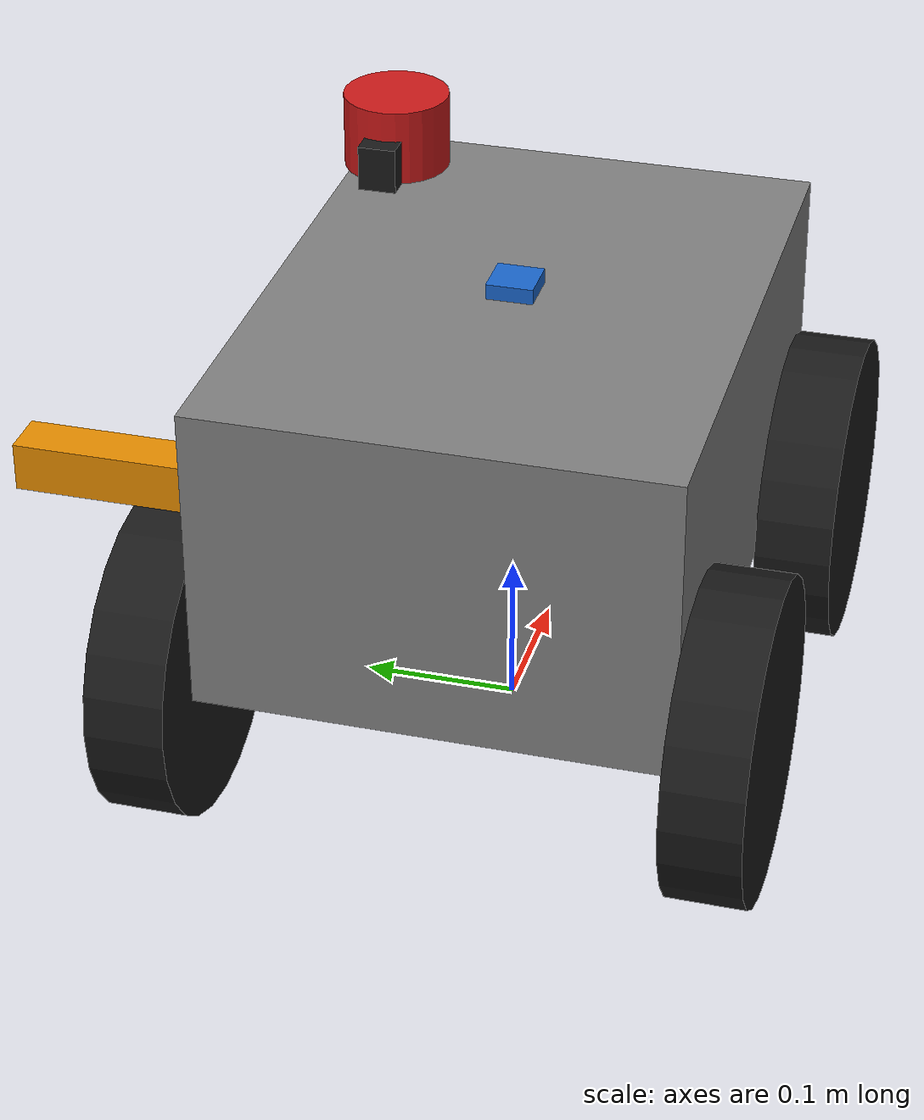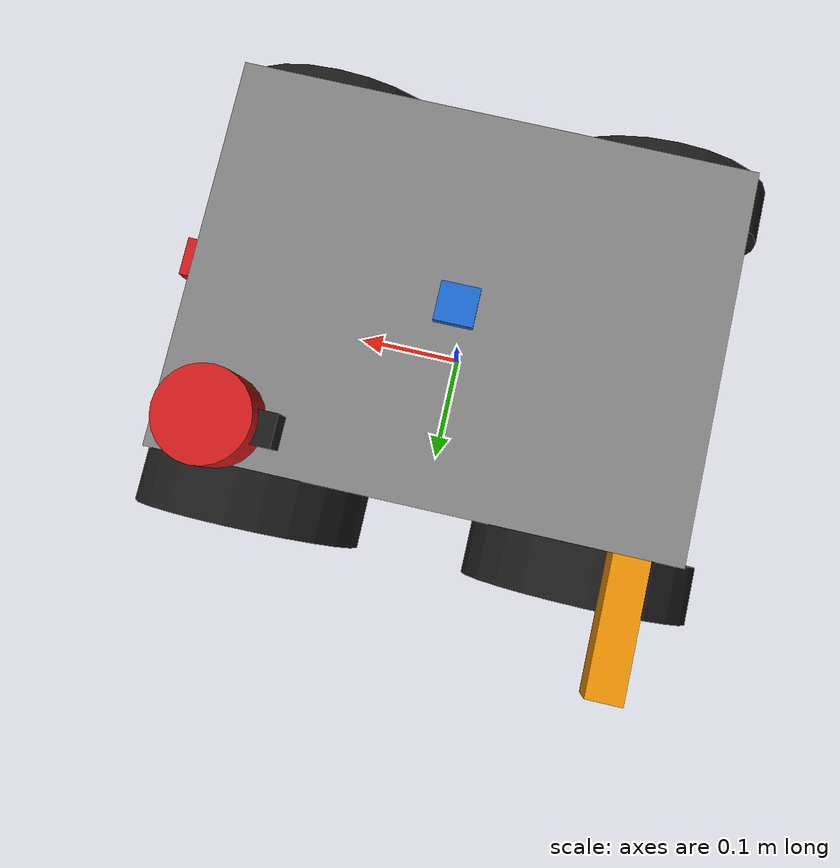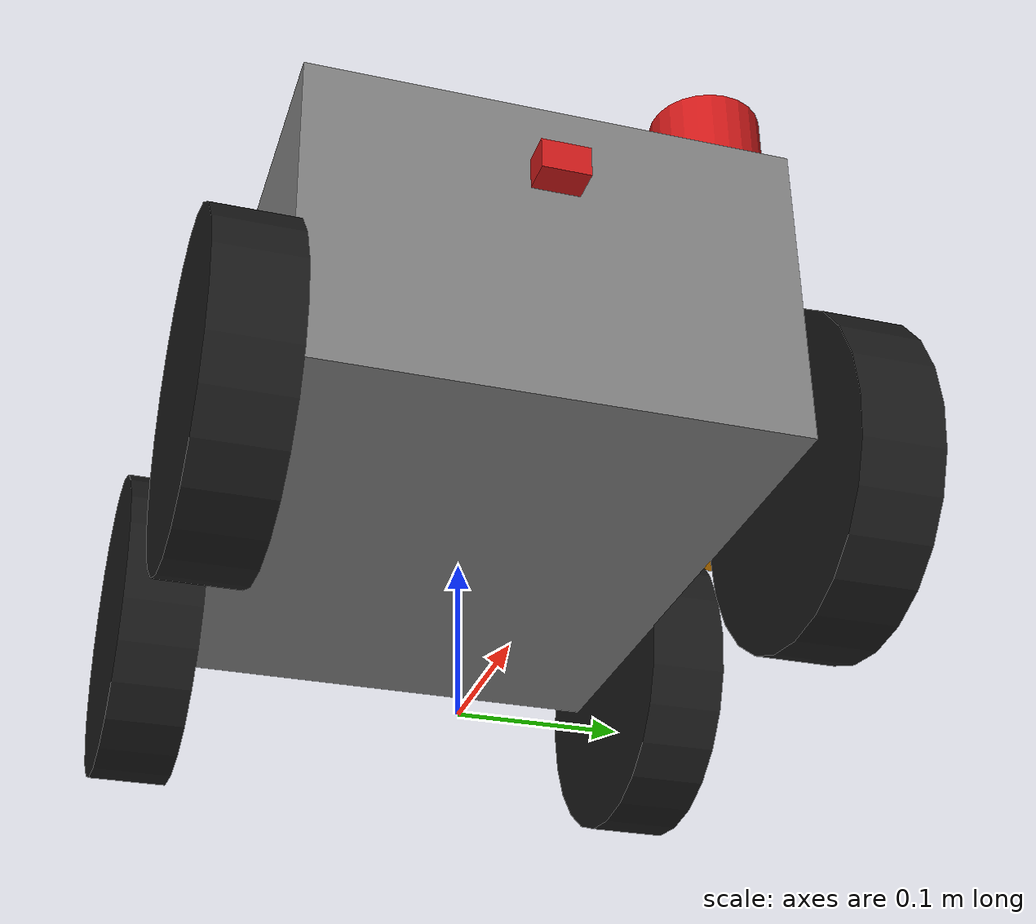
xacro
<?xml version="1.0"?>
<robot name="robot_desmalezador" xmlns:xacro="http://ros.org/wiki/xacro">

  <!-- 1. MATERIALES Y COLORES                                              -->
  <material name="chasis_color">
    <color rgba="0.5 0.5 0.5 1"/> <!-- Gris aluminio -->
  </material>

  <material name="rueda_color">
    <color rgba="0.1 0.1 0.1 1"/> <!-- Negro -->
  </material>

  <material name="lidar_color">
    <color rgba="0.8 0.1 0.1 1"/> <!-- Rojo oscuro -->
  </material>

  <material name="brazo_color">
    <color rgba="0.9 0.55 0.0 1"/> <!-- Naranja industrial -->
  </material>

  <material name="imu_color">
    <color rgba="0.1 0.4 0.8 1"/> <!-- Azul electrónica -->
  </material>

  <!-- 2. CHASIS BASE                                                       -->
  <!-- Dimensiones reales de referencia: 40cm largo (x: -0.20 a +0.20),     -->
  <!-- 30cm ancho (y: -0.15 a +0.15), 20cm alto (z: 0.00 a +0.20)           -->
  <link name="base_footprint"/>

  <joint name="base_joint" type="fixed">
    <parent link="base_footprint"/>
    <child link="base_link"/>
    <!-- Elevamos el chasis para alinear el eje de las ruedas (r = 0.1016m) -->
    <origin xyz="0 0 0.1016" rpy="0 0 0"/>
  </joint>

  <link name="base_link">
    <visual>
      <origin xyz="0 0 0.1" rpy="0 0 0"/>
      <geometry>
        <box size="0.4 0.3 0.2"/>
      </geometry>
      <material name="chasis_color"/>
    </visual>
    <collision>
      <origin xyz="0 0 0.1" rpy="0 0 0"/>
      <geometry>
        <box size="0.4 0.3 0.2"/>
      </geometry>
    </collision>
    <inertial>
      <mass value="25.0"/>
      <inertia ixx="0.2708" ixy="0.0" ixz="0.0" iyy="0.4166" iyz="0.0" izz="0.5208"/>
    </inertial>
  </link>

  <!-- 3. RUEDAS (4 ruedas Skid-Steer / DiffDrive)                          -->
  <xacro:macro name="rueda" params="prefix x_reflect y_reflect">
    <link name="${prefix}_wheel">
      <visual>
        <origin xyz="0 0 0" rpy="1.57079632679 0 0"/>
        <geometry>
          <cylinder radius="0.1016" length="0.05"/>
        </geometry>
        <material name="rueda_color"/>
      </visual>
      <collision>
        <origin xyz="0 0 0" rpy="1.57079632679 0 0"/>
        <geometry>
          <cylinder radius="0.1016" length="0.05"/>
        </geometry>
      </collision>
      <inertial>
        <mass value="0.8"/>
        <inertia ixx="0.0022" ixy="0" ixz="0" iyy="0.0022" iyz="0" izz="0.0041"/>
      </inertial>
    </link>

    <joint name="${prefix}_wheel_joint" type="continuous">
      <parent link="base_link"/>
      <child link="${prefix}_wheel"/>
      <origin xyz="${x_reflect * 0.15} ${y_reflect * 0.175} 0" rpy="0 0 0"/>
      <axis xyz="0 1 0"/>
    </joint>

    <gazebo reference="${prefix}_wheel">
      <mu1>0.9</mu1>
      <mu2>0.15</mu2>
    </gazebo>
  </xacro:macro>

  <xacro:rueda prefix="front_left"  x_reflect="1"  y_reflect="1" />
  <xacro:rueda prefix="front_right" x_reflect="1"  y_reflect="-1" />
  <xacro:rueda prefix="rear_left"   x_reflect="-1" y_reflect="1" />
  <xacro:rueda prefix="rear_right"  x_reflect="-1" y_reflect="-1" />

  <!-- 4. SENSOR RPLIDAR A1 (ESQUINA SUPERIOR IZQUIERDA)                    -->
  <!-- Especificación real:                                                 -->
  <!-- - Posición: esquina delantera-izquierda del techo del chasis         -->
  <!--   (x = +0.15 m adelante, y = +0.12 m a la izquierda, z = +0.23 m).   -->
  <!-- - Orientación por defecto: el motor del RPLidar A1 (ángulo 0° / +X   -->
  <!--   del sensor) apunta hacia ATRÁS del robot (-X de base_link).        -->
  <!--   Por ello aplicamos yaw = pi (3.14159265 rad):                      -->
  <!--     *   0° del LiDAR -> Atrás del robot (-X_robot)                   -->
  <!--     * ±180° del LiDAR -> Adelante del robot (+X_robot)               -->
  <!--     *  -90° del LiDAR -> Izquierda del robot (+Y_robot, árboles)     -->
  <link name="lidar_link">
    <visual>
      <geometry>
        <cylinder radius="0.035" length="0.05"/>
      </geometry>
      <material name="lidar_color"/>
    </visual>
    <!-- Pequeño bloque visual representando el motor del RPLidar A1 (+X_lidar hacia atrás) -->
    <visual name="motor_rplidar">
      <origin xyz="0.035 0 -0.01" rpy="0 0 0"/>
      <geometry>
        <box size="0.025 0.025 0.03"/>
      </geometry>
      <material name="rueda_color"/>
    </visual>
    <collision>
      <geometry>
        <cylinder radius="0.035" length="0.05"/>
      </geometry>
    </collision>
    <inertial>
      <mass value="0.2"/>
      <inertia ixx="0.0001" ixy="0" ixz="0" iyy="0.0001" iyz="0" izz="0.0001"/>
    </inertial>
  </link>

  <joint name="lidar_joint" type="fixed">
    <parent link="base_link"/>
    <child link="lidar_link"/>
    <!-- Esquina superior izquierda (x=+0.15m frente, y=+0.12m izq, z=0.23m alto), rotado pi rad -->
    <origin xyz="0.15 0.12 0.23" rpy="0 0 3.14159265359"/>
  </joint>

  <!-- 5. BRAZO TRASERO EXTENSIBLE (STEPPER EN LA PARTE TRASERA)            -->
  <!-- Especificación real:                                                 -->
  <!-- - Ubicado en el extremo trasero izquierdo del chasis (x = -0.17 m).  -->
  <!-- - Al recibir MOVE_Stepper positivo (+X), se despliega hacia la       -->
  <!--   izquierda (+Y_robot) hacia el tronco del árbol; con -X se retrae.  -->
  <!-- - Como el LiDAR está en x = +0.15 m y el brazo en x = -0.17 m        -->
  <!--   (separación longitudinal de 0.32 m), el delay de 1.0 s a 0.20 m/s  -->
  <!--   alinea exactamente este brazo trasero con el centro del tronco.    -->
  <link name="brazo_soporte_link">
    <visual>
      <origin xyz="0 0 0" rpy="0 0 0"/>
      <geometry>
        <box size="0.05 0.08 0.05"/>
      </geometry>
      <material name="rueda_color"/>
    </visual>
    <inertial>
      <mass value="0.3"/>
      <inertia ixx="0.0002" ixy="0" ixz="0" iyy="0.0002" iyz="0" izz="0.0002"/>
    </inertial>
  </link>

  <joint name="brazo_soporte_joint" type="fixed">
    <parent link="base_link"/>
    <child link="brazo_soporte_link"/>
    <!-- Parte más trasera del robot (x = -0.17 m), costado izquierdo (y = +0.11 m) -->
    <origin xyz="-0.17 0.11 0.14" rpy="0 0 0"/>
  </joint>

  <link name="brazo_extensible_link">
    <visual>
      <!-- Barra extensible de 25 cm orientada hacia el lado izquierdo (+Y) -->
      <origin xyz="0 0.02 0" rpy="0 0 0"/>
      <geometry>
        <box size="0.03 0.26 0.03"/>
      </geometry>
      <material name="brazo_color"/>
    </visual>
    <collision>
      <origin xyz="0 0.02 0" rpy="0 0 0"/>
      <geometry>
        <box size="0.03 0.26 0.03"/>
      </geometry>
    </collision>
    <inertial>
      <mass value="0.25"/>
      <inertia ixx="0.001" ixy="0" ixz="0" iyy="0.0001" iyz="0" izz="0.001"/>
    </inertial>
  </link>

  <!-- Articulación prismática que simula el recorrido lineal del stepper (+Y) -->
  <joint name="brazo_stepper_joint" type="prismatic">
    <parent link="brazo_soporte_link"/>
    <child link="brazo_extensible_link"/>
    <origin xyz="0 0 0" rpy="0 0 0"/>
    <axis xyz="0 1 0"/>
    <limit lower="0.0" upper="0.25" effort="50.0" velocity="0.25"/>
    <dynamics damping="5.0" friction="0.5"/>
  </joint>

  <!-- 6. SENSOR FRONTAL TF-MINI (DETECCIÓN DE OBSTÁCULOS FRONTALES)        -->
  <link name="tfmini_link">
    <visual>
      <geometry>
        <box size="0.02 0.03 0.02"/>
      </geometry>
      <material name="lidar_color"/>
    </visual>
    <inertial>
      <mass value="0.05"/>
      <inertia ixx="0.00001" ixy="0" ixz="0" iyy="0.00001" iyz="0" izz="0.00001"/>
    </inertial>
  </link>

  <joint name="tfmini_joint" type="fixed">
    <parent link="base_link"/>
    <child link="tfmini_link"/>
    <!-- Frente del chasis (x = +0.21 m para sobresalir de la caja de colisión) -->
    <origin xyz="0.21 0 0.15" rpy="0 0 0"/>
  </joint>

  <!-- 7. SENSOR IMU (INTEGRADO CON LA STM32 PARA MANTENER RUMBO)           -->
  <link name="imu_link">
    <visual>
      <geometry>
        <box size="0.03 0.03 0.01"/>
      </geometry>
      <material name="imu_color"/>
    </visual>
    <inertial>
      <mass value="0.02"/>
      <inertia ixx="0.00001" ixy="0" ixz="0" iyy="0.00001" iyz="0" izz="0.00001"/>
    </inertial>
  </link>

  <joint name="imu_joint" type="fixed">
    <parent link="base_link"/>
    <child link="imu_link"/>
    <origin xyz="0 0 0.205" rpy="0 0 0"/>
  </joint>

  <!-- 8. PLUGINS DE SIMULACIÓN EN GAZEBO FORTRESS                          -->

  <!-- 8.1 Tracción diferencial de 4 ruedas -->
  <gazebo>
    <plugin filename="ignition-gazebo-diff-drive-system" name="ignition::gazebo::systems::DiffDrive">
      <left_joint>front_left_wheel_joint</left_joint>
      <left_joint>rear_left_wheel_joint</left_joint>
      <right_joint>front_right_wheel_joint</right_joint>
      <right_joint>rear_right_wheel_joint</right_joint>

      <wheel_separation>0.35</wheel_separation>
      <wheel_radius>0.1016</wheel_radius>

      <topic>/cmd_vel</topic>
      <odom_topic>/odom</odom_topic>
      <tf_topic>/tf</tf_topic>
      <frame_id>odom</frame_id>
      <child_frame_id>base_footprint</child_frame_id>
    </plugin>
  </gazebo>

  <!-- 8.2 Controlador de posición del brazo trasero (stepper) -->
  <gazebo>
    <plugin filename="ignition-gazebo-joint-position-controller-system"
            name="ignition::gazebo::systems::JointPositionController">
      <joint_name>brazo_stepper_joint</joint_name>
      <topic>/brazo/cmd_pos</topic>
      <p_gain>40.0</p_gain>
      <i_gain>0.5</i_gain>
      <d_gain>4.0</d_gain>
      <i_max>10.0</i_max>
      <i_min>-10.0</i_min>
      <cmd_max>50.0</cmd_max>
      <cmd_min>-50.0</cmd_min>
    </plugin>
  </gazebo>

  <!-- 8.3 Publicador de estado de articulaciones (para visualizar ruedas y brazo) -->
  <gazebo>
    <plugin filename="ignition-gazebo-joint-state-publisher-system"
            name="ignition::gazebo::systems::JointStatePublisher">
      <topic>/joint_states</topic>
    </plugin>
  </gazebo>

  <!-- 8.4 Sistema y sensor IMU en Gazebo Fortress -->
  <gazebo>
    <plugin filename="libignition-gazebo-imu-system.so"
            name="ignition::gazebo::systems::Imu"/>
  </gazebo>

  <gazebo reference="imu_link">
    <sensor name="imu_sensor" type="imu">
      <always_on>1</always_on>
      <update_rate>50</update_rate>
      <visualize>true</visualize>
      <topic>/imu/data</topic>
      <gz_frame_id>imu_link</gz_frame_id>
      <ignition_frame_id>imu_link</ignition_frame_id>
    </sensor>
  </gazebo>

  <!-- 8.5 RPLidar A1 de 360° en la esquina superior izquierda -->
  <gazebo reference="lidar_link">
    <sensor type="gpu_lidar" name="rplidar_sensor">
      <topic>/scan</topic>
      <update_rate>10</update_rate>
      <gz_frame_id>lidar_link</gz_frame_id>
      <ignition_frame_id>lidar_link</ignition_frame_id>
      <lidar>
        <scan>
          <horizontal>
            <samples>360</samples>
            <resolution>1</resolution>
            <min_angle>-3.14159265</min_angle>
            <max_angle>3.14159265</max_angle>
          </horizontal>
        </scan>
        <range>
          <min>0.15</min>
          <max>12.0</max>
          <resolution>0.01</resolution>
        </range>
      </lidar>
      <always_on>1</always_on>
      <visualize>true</visualize>
    </sensor>
  </gazebo>

  <!-- 8.6 Sensor frontal TF-Mini -->
  <gazebo reference="tfmini_link">
    <sensor type="gpu_lidar" name="tfmini_sensor">
      <topic>/tf_mini/scan</topic>
      <update_rate>20</update_rate>
      <gz_frame_id>tfmini_link</gz_frame_id>
      <ignition_frame_id>tfmini_link</ignition_frame_id>
      <lidar>
        <scan>
          <horizontal>
            <samples>3</samples>
            <resolution>1</resolution>
            <min_angle>-0.01</min_angle>
            <max_angle>0.01</max_angle>
          </horizontal>
        </scan>
        <range>
          <min>0.02</min>
          <max>12.0</max>
          <resolution>0.01</resolution>
        </range>
      </lidar>
      <always_on>1</always_on>
      <visualize>true</visualize>
    </sensor>
  </gazebo>

</robot>
